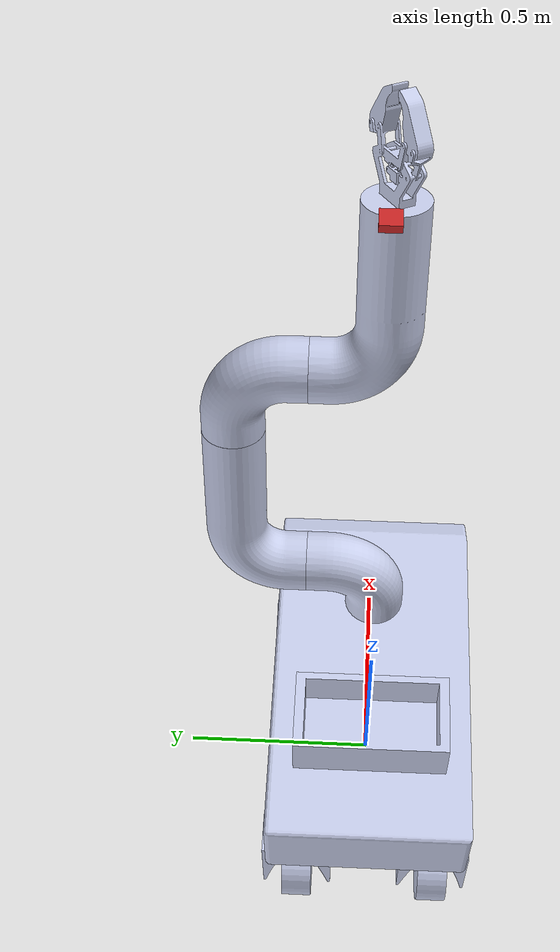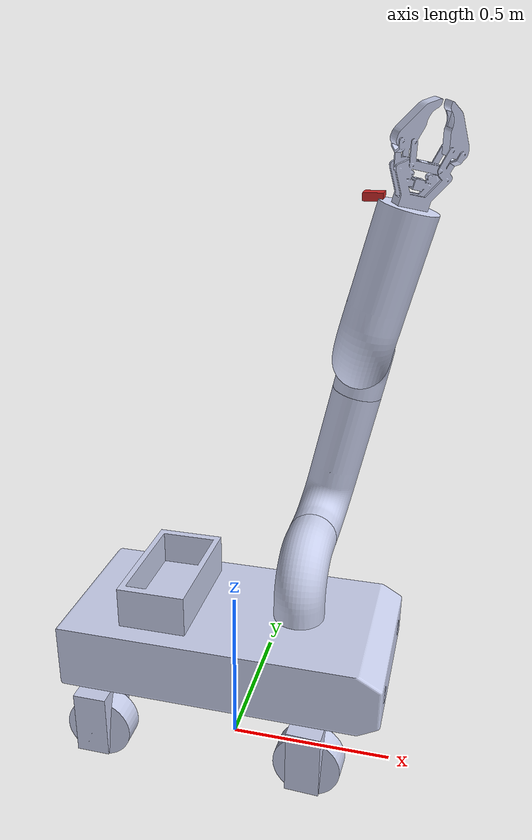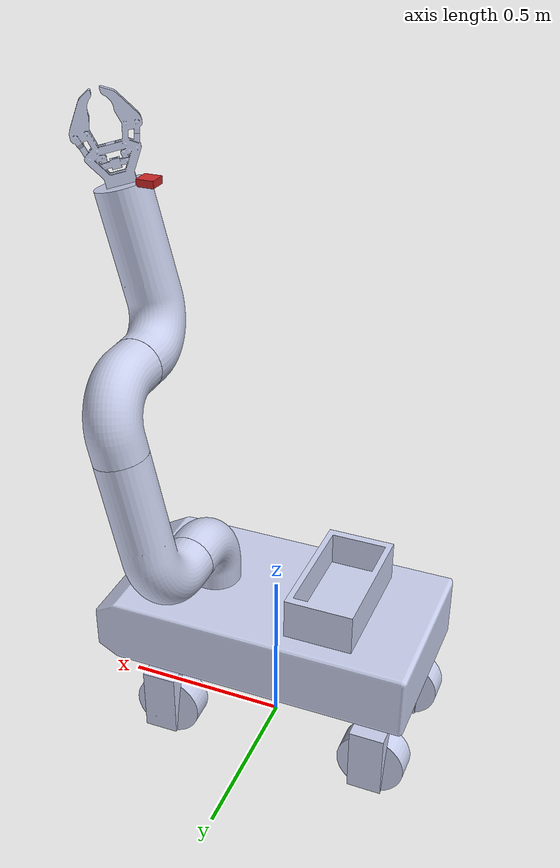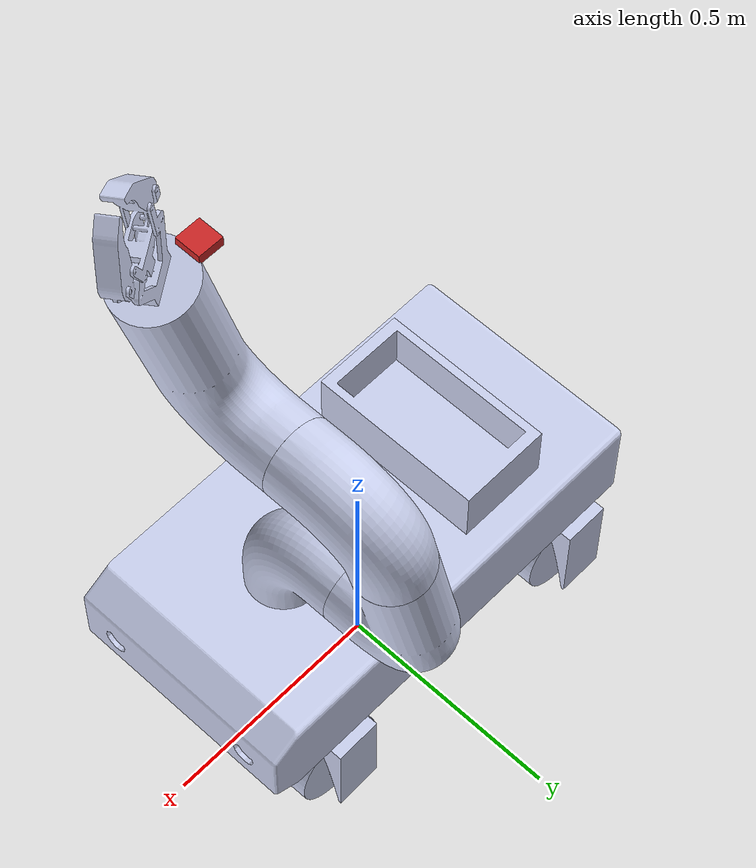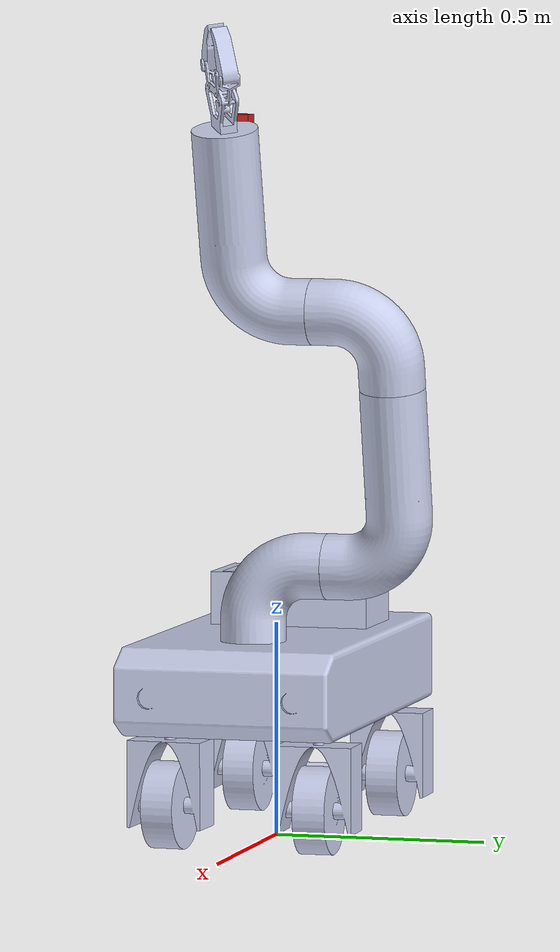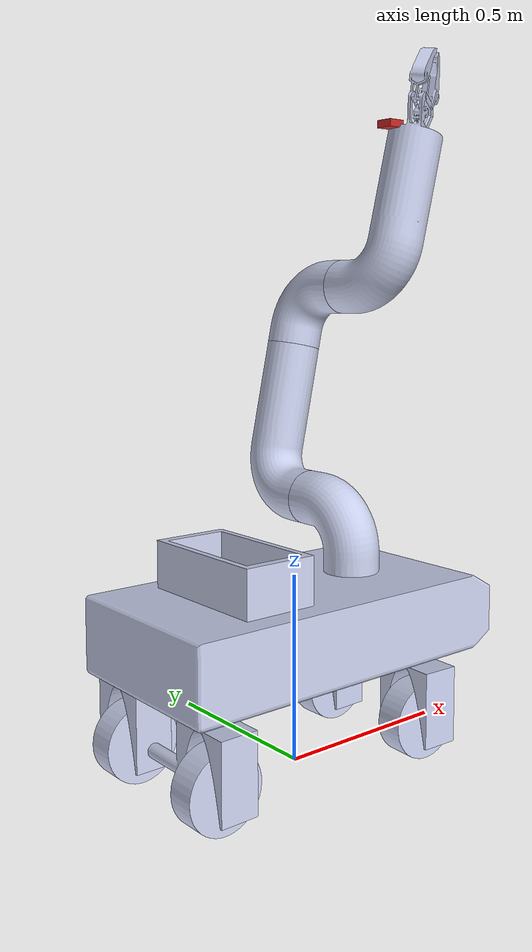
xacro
<?xml version="1.0"?>
<!-- Name your robot here -->
<robot name ="husky" xmlns:xacro="http://wiki.ros.org/xacro">

<!-- Include your urdf files here -->
	<!-- Include Robot's urdf filepath -->
	<!-- Include Lidar's urdf filepath -->
	<xacro:include filename="$(find husky)/urdf/husky.urdf"/>
	<xacro:include filename="$(find manipulator_v5)/urdf/manipulator_v5.urdf"/>
	<xacro:include filename="$(find basket_assembly)/urdf/basket_assembly.urdf"/>

<!-- Add your gazebo sensors here -->

<!--  Gazebo plugin for control here is already added for you -->
	<gazebo>
		<plugin name="gazebo_ros_control" filename="libgazebo_ros_control.so">
			<robotNamespace>/husky</robotNamespace>
			<robotSimType>gazebo_ros_control/DefaultRobotHWSim</robotSimType>
			<legacyModeNS>true</legacyModeNS>
		</plugin>
		<plugin name="p3d_base_controller" filename="libgazebo_ros_p3d.so">
    		<alwaysOn>true</alwaysOn>
    		<updateRate>50.0</updateRate>
    		<bodyName>Chassis</bodyName>
    		<topicName>ground_truth/state</topicName>
    		<gaussianNoise>0.01</gaussianNoise>
    		<frameName>world</frameName>
    		<xyzOffsets>0 0 0</xyzOffsets>
    		<rpyOffsets>0 0 0</rpyOffsets>
  		</plugin>
	</gazebo>

<!-- Create a joint between your robot and sensor -->

<joint name="link_to_manipulator" type="fixed">
    <parent link="Chassis"/>
    <child link="base_link"/>
	<origin xyz="0.2 0 0.505" rpy="0 0 1.57" />
</joint>

<joint name="link_to_basket" type="fixed">
    <parent link="Chassis"/>
    <child link="basket_base"/>
	<origin xyz="-0.2 0 0.605" rpy="1.57 0 1.57" />
</joint>
</robot>

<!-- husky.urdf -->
<robot
  name="husky">
  <link name="base" />

  <joint name="base_link_to_chassis" type="fixed">
    <parent link="base"/>
    <child link="Chassis"/>
  </joint>

  <link
    name="Chassis">
    <inertial>
      <origin
        xyz="-0.00409511910471694 -7.92446652583267E-05 0.378414294437562"
        rpy="0 0 0" />
      <mass
        value="98.2091641278018" />
      <inertia
        ixx="2.43706506980442"
        ixy="-0.000192777669574608"
        ixz="1.33323634062716E-05"
        iyy="7.76169144977584"
        iyz="0.000771573849380231"
        izz="9.53629526187739" />
    </inertial>
    <visual>
      <origin
        xyz="0 0 0"
        rpy="0 0 0" />
      <geometry>
        <mesh
          filename="package://husky/meshes/Chassis.STL" />
      </geometry>
      <material
        name="">
        <color
          rgba="0.792156862745098 0.819607843137255 0.933333333333333 1" />
      </material>
    </visual>
    <collision>
      <origin
        xyz="0 0 0"
        rpy="0 0 0" />
      <geometry>
        <mesh
          filename="package://husky/meshes/Chassis.STL" />
      </geometry>
    </collision>
  </link>
  <link
    name="Front_L_lateral">
    <inertial>
      <origin
        xyz="6.32840144176861E-09 5.59948220568707E-08 -0.0900878133769817"
        rpy="0 0 0" />
      <mass
        value="1.56068233140516" />
      <inertia
        ixx="0.00440193254427216"
        ixy="-3.88814756276166E-06"
        ixz="1.17225961295948E-09"
        iyy="0.00468417393852864"
        iyz="-1.52397334132621E-08"
        izz="0.00215293929877346" />
    </inertial>
    <visual>
      <origin
        xyz="0 0 0"
        rpy="0 0 0" />
      <geometry>
        <mesh
          filename="package://husky/meshes/Front_L_lateral.STL" />
      </geometry>
      <material
        name="">
        <color
          rgba="0.792156862745098 0.819607843137255 0.933333333333333 1" />
      </material>
    </visual>
    <collision>
      <origin
        xyz="0 0 0"
        rpy="0 0 0" />
      <geometry>
        <mesh
          filename="package://husky/meshes/Front_L_lateral.STL" />
      </geometry>
    </collision>
  </link>
  <joint
    name="Front_L_lateral_joint"
    type="revolute">
    <origin
      xyz="0.277600320101877 0.1778 0.2666746"
      rpy="0 0 3.14159265358979" />
    <parent
      link="Chassis" />
    <child
      link="Front_L_lateral" />
    <axis
      xyz="0 0 1" />
    <limit
      lower="-0.5"
      upper="0.5"
      effort="30"
      velocity="100" />
  </joint>
  <link
    name="wheel_FL">
    <inertial>
      <origin
        xyz="0 -5.55111512312578E-17 -1.38413591995734E-05"
        rpy="0 0 0" />
      <mass
        value="2.3833672867985" />
      <inertia
        ixx="0.00752117923800553"
        ixy="1.60333390448917E-18"
        ixz="-6.91178884959509E-18"
        iyy="0.00752117923800553"
        iyz="-1.52686865250883E-18"
        izz="0.0127375442021922" />
    </inertial>
    <visual>
      <origin
        xyz="0 0 0"
        rpy="0 0 0" />
      <geometry>
        <mesh
          filename="package://husky/meshes/wheel_FL.STL" />
      </geometry>
      <material
        name="">
        <color
          rgba="0.792156862745098 0.819607843137255 0.933333333333333 1" />
      </material>
    </visual>
    <collision>
      <origin
        xyz="0 0 0"
        rpy="0 0 0" />
      <geometry>
        <mesh
          filename="package://husky/meshes/wheel_FL.STL" />
      </geometry>
    </collision>
  </link>
  <joint
    name="wheel_FL_joint"
    type="continuous">
    <origin
      xyz="0 -0.00025397591072851 -0.165100000000001"
      rpy="1.5707963267949 0 0.0137725196566579" />
    <parent
      link="Front_L_lateral" />
    <child
      link="wheel_FL" />
    <axis
      xyz="-0.0576811894510143 0 -0.998335054169449" />
  </joint>
  <link
    name="Front_R_lateral">
    <inertial>
      <origin
        xyz="-9.68773519738342E-09 -5.52423745220354E-08 -0.0900878142178023"
        rpy="0 0 0" />
      <mass
        value="1.56068241667093" />
      <inertia
        ixx="0.00440249549661789"
        ixy="1.31752084700576E-05"
        ixz="-2.45792301781752E-10"
        iyy="0.0046836116815121"
        iyz="1.53412531549081E-08"
        izz="0.0021529393553379" />
    </inertial>
    <visual>
      <origin
        xyz="0 0 0"
        rpy="0 0 0" />
      <geometry>
        <mesh
          filename="package://husky/meshes/Front_R_lateral.STL" />
      </geometry>
      <material
        name="">
        <color
          rgba="0.792156862745098 0.819607843137255 0.933333333333333 1" />
      </material>
    </visual>
    <collision>
      <origin
        xyz="0 0 0"
        rpy="0 0 0" />
      <geometry>
        <mesh
          filename="package://husky/meshes/Front_R_lateral.STL" />
      </geometry>
    </collision>
  </link>
  <joint
    name="Front_R_lateral_joint"
    type="revolute">
    <origin
      xyz="0.277600320101878 -0.1778 0.266674599999999"
      rpy="0 0 3.14159265358979" />
    <parent
      link="Chassis" />
    <child
      link="Front_R_lateral" />
    <axis
      xyz="0 0 1" />
    <limit
      lower="-0.5"
      upper="0.5"
      effort="30"
      velocity="100" />
  </joint>
  <link
    name="wheel_FR">
    <inertial>
      <origin
        xyz="0 0 1.38413591996983E-05"
        rpy="0 0 0" />
      <mass
        value="2.3833672867985" />
      <inertia
        ixx="0.00752117923800552"
        ixy="1.59902634902589E-18"
        ixz="-3.55076211489003E-18"
        iyy="0.00752117923800552"
        iyz="3.07306291419973E-18"
        izz="0.0127375442021922" />
    </inertial>
    <visual>
      <origin
        xyz="0 0 0"
        rpy="0 0 0" />
      <geometry>
        <mesh
          filename="package://husky/meshes/wheel_FR.STL" />
      </geometry>
      <material
        name="">
        <color
          rgba="0.792156862745098 0.819607843137255 0.933333333333333 1" />
      </material>
    </visual>
    <collision>
      <origin
        xyz="0 0 0"
        rpy="0 0 0" />
      <geometry>
        <mesh
          filename="package://husky/meshes/wheel_FR.STL" />
      </geometry>
    </collision>
  </link>
  <joint
    name="wheel_FR_joint"
    type="continuous">
    <origin
      xyz="1.18653090454834E-05 0.000253722711709981 -0.165100000000001"
      rpy="1.5707963267949 0 -0.0467308215193505" />
    <parent
      link="Front_R_lateral" />
    <child
      link="wheel_FR" />
    <axis
      xyz="0 0 1" />
  </joint>
  <link
    name="Back_L_lateral">
    <inertial>
      <origin
        xyz="-7.09657854702783E-09 0.0750121877140557 0.000254056245475087"
        rpy="0 0 0" />
      <mass
        value="1.56068222160202" />
      <inertia
        ixx="0.00440187852124776"
        ixy="-9.62172481420887E-10"
        ixz="1.5643067493271E-11"
        iyy="0.00215293922624177"
        iyz="-1.51787007981222E-08"
        izz="0.00468422707038218" />
    </inertial>
    <visual>
      <origin
        xyz="0 0 0"
        rpy="0 0 0" />
      <geometry>
        <mesh
          filename="package://husky/meshes/Back_L_lateral.STL" />
      </geometry>
      <material
        name="">
        <color
          rgba="0.792156862745098 0.819607843137255 0.933333333333333 1" />
      </material>
    </visual>
    <collision>
      <origin
        xyz="0 0 0"
        rpy="0 0 0" />
      <geometry>
        <mesh
          filename="package://husky/meshes/Back_L_lateral.STL" />
      </geometry>
    </collision>
  </link>
  <joint
    name="Back_L_lateral_joint"
    type="fixed">
    <origin
      xyz="-0.38192523364007 0.177546 0.101574599999999"
      rpy="1.5707963267949 0 3.14159265358979" />
    <parent
      link="Chassis" />
    <child
      link="Back_L_lateral" />
    <axis
      xyz="0 0 0" />
  </joint>
  <link
    name="wheel_LB">
    <inertial>
      <origin
        xyz="1.11022302462516E-16 0 1.38413591996289E-05"
        rpy="0 0 0" />
      <mass
        value="2.3833672867985" />
      <inertia
        ixx="0.00752117923800552"
        ixy="-5.95487152246847E-19"
        ixz="5.41377533629747E-18"
        iyy="0.00752117923800552"
        iyz="-5.68895854154682E-18"
        izz="0.0127375442021922" />
    </inertial>
    <visual>
      <origin
        xyz="0 0 0"
        rpy="0 0 0" />
      <geometry>
        <mesh
          filename="package://husky/meshes/wheel_LB.STL" />
      </geometry>
      <material
        name="">
        <color
          rgba="0.792156862745098 0.819607843137255 0.933333333333333 1" />
      </material>
    </visual>
    <collision>
      <origin
        xyz="0 0 0"
        rpy="0 0 0" />
      <geometry>
        <mesh
          filename="package://husky/meshes/wheel_LB.STL" />
      </geometry>
    </collision>
  </link>
  <joint
    name="wheel_LB_joint"
    type="continuous">
    <origin
      xyz="0 0 0"
      rpy="0 0 0" />
    <parent
      link="Back_L_lateral" />
    <child
      link="wheel_LB" />
    <axis
      xyz="0 0 1" />
  </joint>
  <link
    name="Back_R_lateral">
    <inertial>
      <origin
        xyz="6.28080043529877E-09 0.0663892566855093 0.0201847240194173"
        rpy="0 0 0" />
      <mass
        value="1.76339054861497" />
      <inertia
        ixx="0.00495428485328606"
        ixy="9.62172475562444E-10"
        ixz="1.5643065374316E-11"
        iyy="0.00270534555828007"
        iyz="1.51787008022865E-08"
        izz="0.00472100874970409" />
    </inertial>
    <visual>
      <origin
        xyz="0 0 0"
        rpy="0 0 0" />
      <geometry>
        <mesh
          filename="package://husky/meshes/Back_R_lateral.STL" />
      </geometry>
      <material
        name="">
        <color
          rgba="0.792156862745098 0.819607843137255 0.933333333333333 1" />
      </material>
    </visual>
    <collision>
      <origin
        xyz="0 0 0"
        rpy="0 0 0" />
      <geometry>
        <mesh
          filename="package://husky/meshes/Back_R_lateral.STL" />
      </geometry>
    </collision>
  </link>
  <joint
    name="Back_R_lateral_joint"
    type="fixed">
    <origin
      xyz="-0.381925233640069 -0.177546 0.101574599999999"
      rpy="1.5707963267949 0 3.14159265358979" />
    <parent
      link="Chassis" />
    <child
      link="Back_R_lateral" />
    <axis
      xyz="0 0 0" />
  </joint>
  <link
    name="wheel_RB">
    <inertial>
      <origin
        xyz="1.11022302462516E-16 -5.55111512312578E-17 -1.38413591996983E-05"
        rpy="0 0 0" />
      <mass
        value="2.3833672867985" />
      <inertia
        ixx="0.00752117923800552"
        ixy="-1.0020935174662E-18"
        ixz="6.14617236406643E-18"
        iyy="0.00752117923800552"
        iyz="5.51223971161121E-18"
        izz="0.0127375442021922" />
    </inertial>
    <visual>
      <origin
        xyz="0 0 0"
        rpy="0 0 0" />
      <geometry>
        <mesh
          filename="package://husky/meshes/wheel_RB.STL" />
      </geometry>
      <material
        name="">
        <color
          rgba="0.792156862745098 0.819607843137255 0.933333333333333 1" />
      </material>
    </visual>
    <collision>
      <origin
        xyz="0 0 0"
        rpy="0 0 0" />
      <geometry>
        <mesh
          filename="package://husky/meshes/wheel_RB.STL" />
      </geometry>
    </collision>
  </link>
  <joint
    name="wheel_RB_joint"
    type="continuous">
    <origin
      xyz="0 0 0"
      rpy="0 0 0" />
    <parent
      link="Back_R_lateral" />
    <child
      link="wheel_RB" />
    <axis
      xyz="0 0 1" />
  </joint>

  <transmission name="wheel_BR_trans">
    <type>transmission_interface/SimpleTransmission</type>
    <joint name="wheel_RB_joint">
      <hardwareInterface>hardware_interface/VelocityJointInterface</hardwareInterface>
    </joint>
    <actuator name="wheel_BR_motor">
      <hardwareInterface>hardware_interface/VelocityJointInterface</hardwareInterface>
    </actuator>
  </transmission>

  <transmission name="wheel_BL_trans">
    <type>transmission_interface/SimpleTransmission</type>
    <joint name="wheel_LB_joint">
      <hardwareInterface>hardware_interface/VelocityJointInterface</hardwareInterface>
    </joint>
    <actuator name="wheel_BL_motor">
      <hardwareInterface>hardware_interface/VelocityJointInterface</hardwareInterface>
    </actuator>
  </transmission>

  <transmission name="Front_R_lateral_trans">
    <type>transmission_interface/SimpleTransmission</type>
    <joint name="Front_R_lateral_joint">
      <hardwareInterface>hardware_interface/EffortJointInterface</hardwareInterface>
    </joint>
    <actuator name="Front_R_lateral_motor">
      <hardwareInterface>hardware_interface/EffortJointInterface</hardwareInterface>
    </actuator>
  </transmission>

  <transmission name="Front_L_lateral_trans">
    <type>transmission_interface/SimpleTransmission</type>
    <joint name="Front_L_lateral_joint">
      <hardwareInterface>hardware_interface/EffortJointInterface</hardwareInterface>
    </joint>
    <actuator name="Front_L_lateral_motor">
      <hardwareInterface>hardware_interface/EffortJointInterface</hardwareInterface>
    </actuator>
  </transmission>
</robot>

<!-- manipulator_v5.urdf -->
<robot
  name="manipulator_v5">
  <link
    name="base_link">
    <inertial>
      <origin
        xyz="0.051468 -1.797E-16 0.10093"
        rpy="0 0 0" />
      <mass
        value="5.4923" />
      <inertia
        ixx="0.030998"
        ixy="5.2555E-17"
        ixz="-0.013585"
        iyy="0.04605"
        iyz="4.7433E-17"
        izz="0.030998" />
    </inertial>
    <visual>
      <origin
        xyz="0 0 0"
        rpy="0 0 0" />
      <geometry>
        <mesh
          filename="package://manipulator_v5/meshes/base_link.STL" />
      </geometry>
      <material
        name="">
        <color
          rgba="0.79216 0.81961 0.93333 1" />
      </material>
    </visual>
    <collision>
      <origin
        xyz="0 0 0"
        rpy="0 0 0" />
      <geometry>
        <mesh
          filename="package://manipulator_v5/meshes/base_link.STL" />
      </geometry>
    </collision>
  </link>
  <link
    name="joint2_link">
    <inertial>
      <origin
        xyz="0.034953 0.1637 -0.12448"
        rpy="0 0 0" />
      <mass
        value="10.126" />
      <inertia
        ixx="0.076237"
        ixy="-0.0067874"
        ixz="0.0028368"
        iyy="0.045899"
        iyz="0.013286"
        izz="0.062634" />
    </inertial>
    <visual>
      <origin
        xyz="0 0 0"
        rpy="0 0 0" />
      <geometry>
        <mesh
          filename="package://manipulator_v5/meshes/joint2_link.STL" />
      </geometry>
      <material
        name="">
        <color
          rgba="0.79216 0.81961 0.93333 1" />
      </material>
    </visual>
    <collision>
      <origin
        xyz="0 0 0"
        rpy="0 0 0" />
      <geometry>
        <mesh
          filename="package://manipulator_v5/meshes/joint2_link.STL" />
      </geometry>
    </collision>
  </link>
  <joint
    name="joint2"
    type="revolute">
    <origin
      xyz="0.203199999999999 0 0.152400000000001"
      rpy="1.5707963267949 0 -1.5707963267949" />
    <parent
      link="base_link" />
    <child
      link="joint2_link" />
    <axis
      xyz="0 0 -1" />
    <limit
      lower="-6.28318530718"
      upper="6.28318530718"
      effort="150.0"
      velocity="3.14"/>
  </joint>
  <link
    name="joint3_link">
    <inertial>
      <origin
        xyz="0.051468 -0.021293 -0.09866"
        rpy="0 0 0" />
      <mass
        value="5.4923" />
      <inertia
        ixx="0.030998"
        ixy="0.0029002"
        ixz="0.013272"
        iyy="0.04537"
        iyz="-0.0031272"
        izz="0.031678" />
    </inertial>
    <visual>
      <origin
        xyz="0 0 0"
        rpy="0 0 0" />
      <geometry>
        <mesh
          filename="package://manipulator_v5/meshes/joint3_link.STL" />
      </geometry>
      <material
        name="">
        <color
          rgba="0.79216 0.81961 0.93333 1" />
      </material>
    </visual>
    <collision>
      <origin
        xyz="0 0 0"
        rpy="0 0 0" />
      <geometry>
        <mesh
          filename="package://manipulator_v5/meshes/joint3_link.STL" />
      </geometry>
    </collision>
  </link>
  <joint
    name="joint3"
    type="revolute">
    <origin
      xyz="0.0954709005415057 0.447120953601814 -0.1524"
      rpy="1.5707963267949 -1.5707963267949 0" />
    <parent
      link="joint2_link" />
    <child
      link="joint3_link" />
    <axis
      xyz="0 -0.20881649287295 -0.977954841648755" />
    <limit
      lower="-3.14159265359"
      upper="3.14159265359"
      effort="150.0"
      velocity="3.14" />
  </joint>
  <link
    name="joint4_link">
    <inertial>
      <origin
        xyz="0.046412 0.18134 0.12587"
        rpy="0 0 0" />
      <mass
        value="5.666" />
      <inertia
        ixx="0.076347"
        ixy="-0.0080337"
        ixz="-0.0033003"
        iyy="0.046855"
        iyz="-0.013175"
        izz="0.06345" />
    </inertial>
    <visual>
      <origin
        xyz="0 0 0"
        rpy="0 0 0" />
      <geometry>
        <mesh
          filename="package://manipulator_v5/meshes/joint4_link.STL" />
      </geometry>
      <material
        name="">
        <color
          rgba="0.79216 0.81961 0.93333 1" />
      </material>
    </visual>
    <collision>
      <origin
        xyz="0 0 0"
        rpy="0 0 0" />
      <geometry>
        <mesh
          filename="package://manipulator_v5/meshes/joint4_link.STL" />
      </geometry>
    </collision>
  </link>
  <joint
    name="joint4"
    type="revolute">
    <origin
      xyz="0.203198117462181 -0.0326790281115857 -0.148857670885751"
      rpy="-1.5707963267949 0 -1.5707963267949" />
    <parent
      link="joint3_link" />
    <child
      link="joint4_link" />
    <axis
      xyz="0.00420961908341663 -0.000898853255685867 0.999990735542084" />
    <limit
      lower="-6.28318530718"
      upper="6.28318530718"
      effort="28.0"
      velocity="6.28" />
  </joint>

<joint name="camera_joint" type="fixed">
    <origin xyz="0.02 0.4395 0.14" rpy="-1.57 3.14 0"/>
    <parent link="joint4_link"/>
    <child link="camera_link"/>
</joint>

<link name="camera_link">
    <visual>
      <geometry>
        <box size="0.05 0.05 0.02"/>
      </geometry>
      <material name="red"/>
    </visual>
</link>

<joint name="camera_optical_joint" type="fixed">
    <origin xyz="0 0 0" rpy="-1.57 -1.57 -1.57"/>
    <parent link="camera_link"/>
    <child link="camera_optical_link"/>
</joint>

<link name="camera_optical_link">
</link>

<transmission name="joint2_transmission">
  <type>transmission_interface/SimpleTransmission</type>
  <joint name="joint2">
    <hardwareInterface>EffortJointInterface</hardwareInterface>
  </joint>
  <actuator name="joint2_motor">
    <mechanicalReduction>1</mechanicalReduction>
  </actuator>
</transmission>

<transmission name="joint3_transmission">
  <type>transmission_interface/SimpleTransmission</type>
  <joint name="joint3">
    <hardwareInterface>EffortJointInterface</hardwareInterface>
  </joint>
  <actuator name="joint3_motor">
    <mechanicalReduction>1</mechanicalReduction>
  </actuator>
</transmission>

<transmission name="joint4_transmission">
  <type>transmission_interface/SimpleTransmission</type>
  <joint name="joint4">
    <hardwareInterface>EffortJointInterface</hardwareInterface>
  </joint>
  <actuator name="joint4_motor">
    <mechanicalReduction>1</mechanicalReduction>
  </actuator>
</transmission>

<gazebo reference="camera_optical_link">
		<!-- Gazebo has fixed set of Sensors types. Check them out here <> -->
		<sensor name="camera" type="camera">
			<!-- Add in your sensor characteristics -->
			<pose> 0 0 0 0 0 0 </pose>
			<visualise>true</visualise>
			<update_rate>40</update_rate>
        <camera>
                    <horizontal_fov>1.089</horizontal_fov>
                    <image>
                        <width>640</width>
                        <height>480</height>
                        <format>R8G8B8</format>
                    </image>
                    <clip>
                        <near>0.02</near>
                        <far>300</far>
                    </clip>
          </camera>
      <plugin name="camera_controller" filename="libgazebo_ros_camera.so">
            	<!-- Use topic name as /my_robot/scan -->
				<topicName></topicName>
				<frameName>camera_optical_link</frameName>
			</plugin>
		</sensor>
	</gazebo>
</robot>

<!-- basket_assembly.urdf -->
<robot
  name="basket_assembly">
  <link
    name="basket_base">
    <inertial>
      <origin
        xyz="-1.1365E-16 0 0.080634"
        rpy="0 0 0" />
      <mass
        value="4.1855" />
      <inertia
        ixx="0.026882"
        ixy="-5.6424E-34"
        ixz="-1.1381E-17"
        iyy="0.073211"
        iyz="1.4755E-18"
        izz="0.087657" />
    </inertial>
    <visual>
      <origin
        xyz="0 0 0"
        rpy="0 0 0" />
      <geometry>
        <mesh
          filename="package://basket_assembly/meshes/base_link.STL" />
      </geometry>
      <material
        name="">
        <color
          rgba="0.79216 0.81961 0.93333 1" />
      </material>
    </visual>
    <collision>
      <origin
        xyz="0 0 0"
        rpy="0 0 0" />
      <geometry>
        <mesh
          filename="package://basket_assembly/meshes/base_link.STL" />
      </geometry>
    </collision>
  </link>
</robot>
